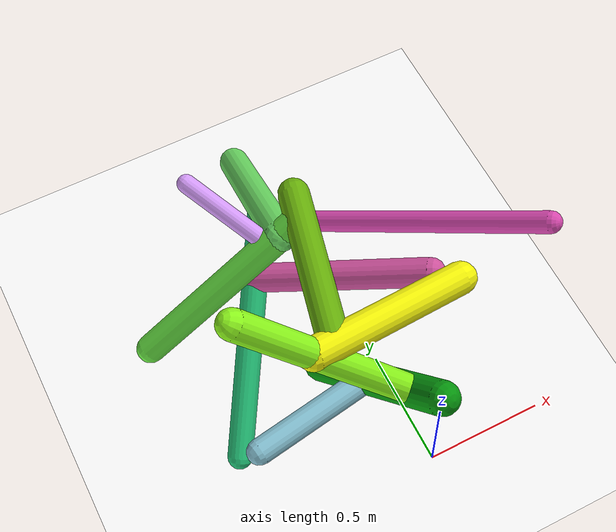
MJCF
<mujoco model="morphology">
  <option timestep="0.01"/>
  <default>
    <default class="/"/>
    <default class="0/"/>
    <default class="0/1/"/>
    <default class="0/2/"/>
    <default class="0/2/3/"/>
    <default class="0/2/3/4/"/>
    <default class="0/2/3/4/5/"/>
    <default class="0/2/3/4/5/6/"/>
    <default class="0/2/3/4/5/7/"/>
    <default class="0/2/3/4/5/7/8/"/>
    <default class="0/2/3/4/5/7/8/9/"/>
    <default class="0/2/3/4/5/7/10/"/>
  </default>
  <asset>
    <texture name="texplane" type="2d" builtin="checker" rgb1="0.10000000000000001 0.20000000000000001 0.29999999999999999" rgb2="0.20000000000000001 0.29999999999999999 0.40000000000000002" width="300" height="300"/>
    <material name="MatPlane" class="/" texture="texplane" texrepeat="20 20" specular="1" shininess="1" reflectance="0.5"/>
  </asset>
  <worldbody>
    <light name="//unnamed_light_0" class="/" directional="true" pos="0 0 1.5" dir="0 0 -1.3" cutoff="100" exponent="1" diffuse="1 1 1" specular="0.10000000000000001 0.10000000000000001 0.10000000000000001"/>
    <geom name="ground" class="/" type="plane" size="15 15 0.5" material="MatPlane" rgba="1 1 1 1"/>
    <site name="body" class="/" size="9.9999999999999995e-07 9.9999999999999995e-07 9.9999999999999995e-07" pos="0 0 0.6339807868003845"/>
    <body pos="0 0 0.6339807868003845" name="0/">
      <freejoint name="0/"/>
      <geom name="0/geom" class="0/" type="capsule" contype="1" conaffinity="1" condim="3" size="0.069239408312006562" rgba="0.028983618900700781 0.59713778164759235 0.059517698026362087 1" friction="0.59999999999999998 0.10000000000000001 0.10000000000000001" fromto="0 0 0 -0.24072216535364432 0.54030887701177166 -0.52425831496177866"/>
      <site name="0/end0" class="0/" size="0.0050000000000000001" pos="-0.24072216535364432 0.54030887701177166 -0.52425831496177866"/>
      <site name="0/attach1" class="0/" size="9.9999999999999995e-07 9.9999999999999995e-07 9.9999999999999995e-07" pos="-0.14000442672186406 0.31424457514178822 -0.30490954055919506"/>
      <body pos="-0.14000442672186406 0.31424457514178822 -0.30490954055919506" name="0/1/">
        <joint name="0/1/joint/" class="0/" type="hinge" axis="0 0 1" limited="true" range="-62.681512039241049 62.681512039241049"/>
        <geom name="0/1/geom" class="0/1/" type="capsule" contype="1" conaffinity="1" condim="3" size="0.053794196365464786" rgba="0.54014187003808978 0.77962031529611031 0.85023846878318698 1" friction="0.59999999999999998 0.10000000000000001 0.10000000000000001" fromto="0 0 0 -0.51545219124715547 -0.077864364179542678 -0.011449889936490543"/>
        <site name="0/1/end1" class="0/1/" size="0.0050000000000000001" pos="-0.51545219124715547 -0.077864364179542678 -0.011449889936490543"/>
      </body>
      <site name="0/attach2" class="0/" size="9.9999999999999995e-07 9.9999999999999995e-07 9.9999999999999995e-07" pos="-0.052693658148251055 0.11827266183775501 -0.11475922206577924"/>
      <body pos="-0.052693658148251055 0.11827266183775501 -0.11475922206577924" name="0/2/">
        <joint name="0/2/joint/" class="0/" type="hinge" axis="0 1 0" limited="true" range="-46.75308144498787 46.75308144498787"/>
        <geom name="0/2/geom" class="0/2/" type="capsule" contype="1" conaffinity="1" condim="3" size="0.057852742447363437" rgba="0.56494904536556512 0.98610336337197502 0.11163074240465509 1" friction="0.59999999999999998 0.10000000000000001 0.10000000000000001" fromto="0 0 0 -0.57899988921213097 0.25003245260949769 0.65870212627601488"/>
        <site name="0/2/end2" class="0/2/" size="0.0050000000000000001" pos="-0.57899988921213097 0.25003245260949769 0.65870212627601488"/>
        <site name="0/2/attach3" class="0/2/" size="9.9999999999999995e-07 9.9999999999999995e-07 9.9999999999999995e-07" pos="-0.33681482567506221 0.14544845086822134 0.38317907475827623"/>
        <body pos="-0.33681482567506221 0.14544845086822134 0.38317907475827623" name="0/2/3/">
          <joint name="0/2/3/joint/" class="0/2/" type="hinge" axis="5.5511151231257827e-17 -0.9349128194768016 0.35487747178137069" limited="true" range="-56.046585267591432 56.046585267591432"/>
          <geom name="0/2/3/geom" class="0/2/3/" type="capsule" contype="1" conaffinity="1" condim="3" size="0.064219243848727764" rgba="0.98097914343447989 0.97985150148291977 0.034936872294176191 1" friction="0.59999999999999998 0.10000000000000001 0.10000000000000001" fromto="0 0 0 0.63424906329867481 0.063864310740443297 -0.083706646396342288"/>
          <site name="0/2/3/end3" class="0/2/3/" size="0.0050000000000000001" pos="0.63424906329867481 0.063864310740443297 -0.083706646396342288"/>
          <site name="0/2/3/attach4" class="0/2/3/" size="9.9999999999999995e-07 9.9999999999999995e-07 9.9999999999999995e-07" pos="0.084372282045786479 0.0084956808772060997 -0.011135248260561151"/>
          <body pos="0.084372282045786479 0.0084956808772060997 -0.011135248260561151" name="0/2/3/4/">
            <joint name="0/2/3/4/joint/" class="0/2/3/" type="hinge" axis="-1.3877787807814457e-17 0.79502946304612343 0.60657081440553406" limited="true" range="-59.680294609656116 59.680294609656116"/>
            <geom name="0/2/3/4/geom" class="0/2/3/4/" type="capsule" contype="1" conaffinity="1" condim="3" size="0.060403769827605688" rgba="0.4136832074781488 0.69691415463301654 0.042330237162864881 1" friction="0.59999999999999998 0.10000000000000001 0.10000000000000001" fromto="0 0 0 0.13116659073035342 0.58853202170213748 0.063442700384473083"/>
            <site name="0/2/3/4/end4" class="0/2/3/4/" size="0.0050000000000000001" pos="0.13116659073035342 0.58853202170213748 0.063442700384473083"/>
            <site name="0/2/3/4/attach5" class="0/2/3/4/" size="9.9999999999999995e-07 9.9999999999999995e-07 9.9999999999999995e-07" pos="0.10886555790958934 0.48846940774709807 0.052656129386217915"/>
            <body pos="0.10886555790958934 0.48846940774709807 0.052656129386217915" name="0/2/3/4/5/">
              <joint name="0/2/3/4/5/joint/" class="0/2/3/4/" type="hinge" axis="-6.9388939039072284e-18 -0.10717728749603456 0.99423992529217609" limited="true" range="-46.092520378966803 46.092520378966803"/>
              <geom name="0/2/3/4/5/geom" class="0/2/3/4/5/" type="capsule" contype="1" conaffinity="1" condim="3" size="0.057351553660276354" rgba="0.43478097618025757 0.94935669518013222 0.2849429782857078 1" friction="0.59999999999999998 0.10000000000000001 0.10000000000000001" fromto="0 0 0 -0.66673106151711781 0.032484767115335655 -0.53876134312651613"/>
              <site name="0/2/3/4/5/end5" class="0/2/3/4/5/" size="0.0050000000000000001" pos="-0.66673106151711781 0.032484767115335655 -0.53876134312651613"/>
              <site name="0/2/3/4/5/attach6" class="0/2/3/4/5/" size="9.9999999999999995e-07 9.9999999999999995e-07 9.9999999999999995e-07" pos="-0.12971331351976148 0.0063199497138469347 -0.10481665404080374"/>
              <body pos="-0.12971331351976148 0.0063199497138469347 -0.10481665404080374" name="0/2/3/4/5/6/">
                <geom name="0/2/3/4/5/6/geom" class="0/2/3/4/5/6/" type="capsule" contype="1" conaffinity="1" condim="3" size="0.036251891826751446" rgba="0.84512372480189457 0.61571713922864568 0.99014857928695543 1" friction="0.59999999999999998 0.10000000000000001 0.10000000000000001" fromto="0 0 0 -0.18564040382199765 0.30833766236284355 0.13030208298549661"/>
                <site name="0/2/3/4/5/6/end6" class="0/2/3/4/5/6/" size="0.0050000000000000001" pos="-0.18564040382199765 0.30833766236284355 0.13030208298549661"/>
              </body>
              <site name="0/2/3/4/5/attach7" class="0/2/3/4/5/" size="9.9999999999999995e-07 9.9999999999999995e-07 9.9999999999999995e-07" pos="-0.082675379439150709 0.0040281465830340167 -0.066806994665550928"/>
              <body pos="-0.082675379439150709 0.0040281465830340167 -0.066806994665550928" name="0/2/3/4/5/7/">
                <joint name="0/2/3/4/5/7/joint/" class="0/2/3/4/5/" type="hinge" axis="-0.62920183781763039 -0.046779066503153499 0.77583294994735175" limited="true" range="-58.79549741404081 58.79549741404081"/>
                <geom name="0/2/3/4/5/7/geom" class="0/2/3/4/5/7/" type="capsule" contype="1" conaffinity="1" condim="3" size="0.06246939965727602" rgba="0.43160478388301804 0.87345394041209012 0.39833891948312039 1" friction="0.59999999999999998 0.10000000000000001 0.10000000000000001" fromto="0 0 0 0.091419208609380798 0.71753801611340773 -0.52837493378358724"/>
                <site name="0/2/3/4/5/7/end7" class="0/2/3/4/5/7/" size="0.0050000000000000001" pos="0.091419208609380798 0.71753801611340773 -0.52837493378358724"/>
                <site name="0/2/3/4/5/7/attach8" class="0/2/3/4/5/7/" size="9.9999999999999995e-07 9.9999999999999995e-07 9.9999999999999995e-07" pos="0.034851288497502117 0.27354343565087086 -0.20142973815079387"/>
                <body pos="0.034851288497502117 0.27354343565087086 -0.20142973815079387" name="0/2/3/4/5/7/8/">
                  <joint name="0/2/3/4/5/7/8/joint/" class="0/2/3/4/5/7/" type="hinge" axis="-0.99477856113417606 0.082179960953209452 -0.06051502561799732" limited="true" range="-36.238198384778862 36.238198384778862"/>
                  <geom name="0/2/3/4/5/7/8/geom" class="0/2/3/4/5/7/8/" type="capsule" contype="1" conaffinity="1" condim="3" size="0.051829212019544615" rgba="0.15145542346698482 0.79947742683594314 0.49752217208122329 1" friction="0.59999999999999998 0.10000000000000001 0.10000000000000001" fromto="0 0 0 -0.47003499917166586 -0.70562651391438025 -0.57568477176085131"/>
                  <site name="0/2/3/4/5/7/8/end8" class="0/2/3/4/5/7/8/" size="0.0050000000000000001" pos="-0.47003499917166586 -0.70562651391438025 -0.57568477176085131"/>
                  <site name="0/2/3/4/5/7/8/attach9" class="0/2/3/4/5/7/8/" size="9.9999999999999995e-07 9.9999999999999995e-07 9.9999999999999995e-07" pos="-0.1343835069333624 -0.20173937194482341 -0.16458888945225378"/>
                  <body pos="-0.1343835069333624 -0.20173937194482341 -0.16458888945225378" name="0/2/3/4/5/7/8/9/">
                    <joint name="0/2/3/4/5/7/8/9/joint/" class="0/2/3/4/5/7/8/" type="hinge" axis="0 -0.63215447705958205 0.77484238212266532" limited="true" range="-39.239623068106283 39.239623068106283"/>
                    <geom name="0/2/3/4/5/7/8/9/geom" class="0/2/3/4/5/7/8/9/" type="capsule" contype="1" conaffinity="1" condim="3" size="0.058460671165780825" rgba="0.82912015936236916 0.33122180519936861 0.63051968067832609 1" friction="0.59999999999999998 0.10000000000000001 0.10000000000000001" fromto="0 0 0 0.56230715109287033 -0.40321280174276458 0.23003754308262625"/>
                    <site name="0/2/3/4/5/7/8/9/end9" class="0/2/3/4/5/7/8/9/" size="0.0050000000000000001" pos="0.56230715109287033 -0.40321280174276458 0.23003754308262625"/>
                  </body>
                </body>
                <site name="0/2/3/4/5/7/attach10" class="0/2/3/4/5/7/" size="9.9999999999999995e-07 9.9999999999999995e-07 9.9999999999999995e-07" pos="0.016114463836162839 0.12648042558689412 -0.093136649199967544"/>
                <body pos="0.016114463836162839 0.12648042558689412 -0.093136649199967544" name="0/2/3/4/5/7/10/">
                  <joint name="0/2/3/4/5/7/10/joint/" class="0/2/3/4/5/7/" type="hinge" axis="-0.99477856113417606 0.082179960953209452 -0.06051502561799732" limited="true" range="-41.927705328299048 41.927705328299048"/>
                  <geom name="0/2/3/4/5/7/10/geom" class="0/2/3/4/5/7/10/" type="capsule" contype="1" conaffinity="1" condim="3" size="0.040150983371065624" rgba="0.87427333341380953 0.29310218094804352 0.70469955846292287 1" friction="0.59999999999999998 0.10000000000000001 0.10000000000000001" fromto="0 0 0 0.73349623161903743 -0.71035833045432062 0.47904988462779041"/>
                  <site name="0/2/3/4/5/7/10/end10" class="0/2/3/4/5/7/10/" size="0.0050000000000000001" pos="0.73349623161903743 -0.71035833045432062 0.47904988462779041"/>
                </body>
              </body>
            </body>
          </body>
        </body>
      </body>
      <camera name="0/iso" class="0/" mode="trackcom" pos="-2.2999999999999998 -2.2999999999999998 1" xyaxes="0.45000000000000001 -0.45000000000000001 0 0.29999999999999999 0.14999999999999999 0.93999999999999995"/>
    </body>
  </worldbody>
  <actuator>
    <motor name="0/1/motor" class="0/1/" ctrllimited="true" ctrlrange="-1 1" gear="93" joint="0/1/joint/"/>
    <motor name="0/2/motor" class="0/2/" ctrllimited="true" ctrlrange="-1 1" gear="66" joint="0/2/joint/"/>
    <motor name="0/2/3/motor" class="0/2/3/" ctrllimited="true" ctrlrange="-1 1" gear="87" joint="0/2/3/joint/"/>
    <motor name="0/2/3/4/motor" class="0/2/3/4/" ctrllimited="true" ctrlrange="-1 1" gear="60" joint="0/2/3/4/joint/"/>
    <motor name="0/2/3/4/5/motor" class="0/2/3/4/5/" ctrllimited="true" ctrlrange="-1 1" gear="73" joint="0/2/3/4/5/joint/"/>
    <motor name="0/2/3/4/5/7/motor" class="0/2/3/4/5/7/" ctrllimited="true" ctrlrange="-1 1" gear="75" joint="0/2/3/4/5/7/joint/"/>
    <motor name="0/2/3/4/5/7/8/motor" class="0/2/3/4/5/7/8/" ctrllimited="true" ctrlrange="-1 1" gear="65" joint="0/2/3/4/5/7/8/joint/"/>
    <motor name="0/2/3/4/5/7/8/9/motor" class="0/2/3/4/5/7/8/9/" ctrllimited="true" ctrlrange="-1 1" gear="88" joint="0/2/3/4/5/7/8/9/joint/"/>
    <motor name="0/2/3/4/5/7/10/motor" class="0/2/3/4/5/7/10/" ctrllimited="true" ctrlrange="-1 1" gear="71" joint="0/2/3/4/5/7/10/joint/"/>
  </actuator>
  <sensor>
    <subtreelinvel name="velocity" body="0/"/>
  </sensor>
</mujoco>
